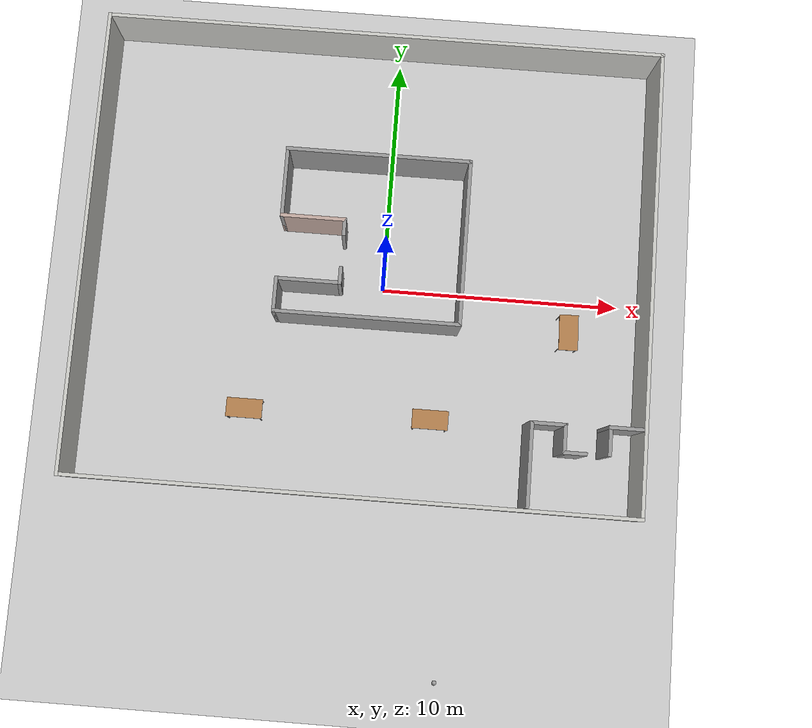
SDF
<sdf version="1.6">
 <world name="default">
  <model name="ground_plane">
   <static>1</static>
   <link name="link">
    <collision name="collision">
     <geometry><plane><normal>0 0 1</normal><size>100 100</size></plane></geometry>
     <surface>
      <contact><collide_bitmask>65535</collide_bitmask></contact>
      <friction><ode><mu>100</mu><mu2>50</mu2></ode></friction>
     </surface>
    </collision>
    <visual name="visual">
     <cast_shadows>0</cast_shadows>
     <geometry><plane><normal>0 0 1</normal><size>100 100</size></plane></geometry>
     <material>
      <script><uri>file://media/materials/scripts/gazebo.material</uri><name>Gazebo/Grey</name></script>
     </material>
    </visual>
   </link>
  </model>
  <model name="building">
   <pose>-0.722 0.806 0 0 -0 0</pose>
   <link name="Wall_11">
    <collision name="Wall_11_Collision">
     <geometry><box><size>7.75 0.15 2.5</size></box></geometry>
     <pose>0 0 1.25 0 -0 0</pose>
    </collision>
    <visual name="Wall_11_Visual">
     <pose>0 0 1.25 0 -0 0</pose>
     <geometry><box><size>7.75 0.15 2.5</size></box></geometry>
     <material>
      <script><uri>file://media/materials/scripts/gazebo.material</uri><name>Gazebo/Grey</name></script>
      <ambient>1 1 1 1</ambient>
     </material>
     <meta><layer>0</layer></meta>
    </visual>
    <pose>0.135 -2.427 0 0 -0 0</pose>
   </link>
   <link name="Wall_12">
    <collision name="Wall_12_Collision">
     <geometry><box><size>7 0.15 2.5</size></box></geometry>
     <pose>0 0 1.25 0 -0 0</pose>
    </collision>
    <visual name="Wall_12_Visual">
     <pose>0 0 1.25 0 -0 0</pose>
     <geometry><box><size>7 0.15 2.5</size></box></geometry>
     <material>
      <script><uri>file://media/materials/scripts/gazebo.material</uri><name>Gazebo/Grey</name></script>
      <ambient>1 1 1 1</ambient>
     </material>
     <meta><layer>0</layer></meta>
    </visual>
    <pose>3.935 0.998 0 0 -0 1.5708</pose>
   </link>
   <link name="Wall_13">
    <collision name="Wall_13_Collision">
     <geometry><box><size>7.75 0.15 2.5</size></box></geometry>
     <pose>0 0 1.25 0 -0 0</pose>
    </collision>
    <visual name="Wall_13_Visual">
     <pose>0 0 1.25 0 -0 0</pose>
     <geometry><box><size>7.75 0.15 2.5</size></box></geometry>
     <material>
      <script><uri>file://media/materials/scripts/gazebo.material</uri><name>Gazebo/Grey</name></script>
      <ambient>1 1 1 1</ambient>
     </material>
     <meta><layer>0</layer></meta>
    </visual>
    <pose>0.135 4.423 0 0 -0 3.14159</pose>
   </link>
   <link name="Wall_15">
    <collision name="Wall_15_Collision">
     <geometry><box><size>3 0.15 2.5</size></box></geometry>
     <pose>0 0 1.25 0 -0 0</pose>
    </collision>
    <visual name="Wall_15_Visual">
     <pose>0 0 1.25 0 -0 0</pose>
     <geometry><box><size>3 0.15 2.5</size></box></geometry>
     <material>
      <script><uri>file://media/materials/scripts/gazebo.material</uri><name>Gazebo/Grey</name></script>
      <ambient>1 1 1 1</ambient>
     </material>
     <meta><layer>0</layer></meta>
    </visual>
    <pose>-3.665 2.998 0 0 0 -1.5708</pose>
   </link>
   <link name="Wall_16">
    <collision name="Wall_16_Collision">
     <geometry><box><size>2.75 0.15 2.5</size></box></geometry>
     <pose>0 0 1.25 0 -0 0</pose>
    </collision>
    <visual name="Wall_16_Visual">
     <pose>0 0 1.25 0 -0 0</pose>
     <geometry><box><size>2.75 0.15 2.5</size></box></geometry>
     <material>
      <script><uri>file://media/materials/scripts/gazebo.material</uri><name>Gazebo/Grey</name></script>
      <ambient>0.760784 0.662745 0.627451 1</ambient>
     </material>
     <meta><layer>0</layer></meta>
    </visual>
    <pose>-2.365 1.573 0 0 -0 0</pose>
   </link>
   <link name="Wall_17">
    <collision name="Wall_17_Collision">
     <geometry><box><size>0.75 0.15 2.5</size></box></geometry>
     <pose>0 0 1.25 0 -0 0</pose>
    </collision>
    <visual name="Wall_17_Visual">
     <pose>0 0 1.25 0 -0 0</pose>
     <geometry><box><size>0.75 0.15 2.5</size></box></geometry>
     <material>
      <script><uri>file://media/materials/scripts/gazebo.material</uri><name>Gazebo/Grey</name></script>
      <ambient>1 1 1 1</ambient>
     </material>
     <meta><layer>0</layer></meta>
    </visual>
    <pose>-1.065 1.273 0 0 0 -1.5708</pose>
   </link>
   <link name="Wall_19">
    <collision name="Wall_19_Collision">
     <geometry><box><size>1.5 0.15 2.5</size></box></geometry>
     <pose>0 0 1.25 0 -0 0</pose>
    </collision>
    <visual name="Wall_19_Visual">
     <pose>0 0 1.25 0 -0 0</pose>
     <geometry><box><size>1.5 0.15 2.5</size></box></geometry>
     <material>
      <script><uri>file://media/materials/scripts/gazebo.material</uri><name>Gazebo/Grey</name></script>
      <ambient>1 1 1 1</ambient>
     </material>
     <meta><layer>0</layer></meta>
    </visual>
    <pose>-3.665 -1.752 0 0 -0 1.5708</pose>
   </link>
   <link name="Wall_20">
    <collision name="Wall_20_Collision">
     <geometry><box><size>2.75 0.15 2.5</size></box></geometry>
     <pose>0 0 1.25 0 -0 0</pose>
    </collision>
    <visual name="Wall_20_Visual">
     <pose>0 0 1.25 0 -0 0</pose>
     <geometry><box><size>2.75 0.15 2.5</size></box></geometry>
     <material>
      <script><uri>file://media/materials/scripts/gazebo.material</uri><name>Gazebo/Grey</name></script>
      <ambient>1 1 1 1</ambient>
     </material>
     <meta><layer>0</layer></meta>
    </visual>
    <pose>-2.365 -1.077 0 0 -0 0</pose>
   </link>
   <link name="Wall_21">
    <collision name="Wall_21_Collision">
     <geometry><box><size>0.75 0.15 2.5</size></box></geometry>
     <pose>0 0 1.25 0 -0 0</pose>
    </collision>
    <visual name="Wall_21_Visual">
     <pose>0 0 1.25 0 -0 0</pose>
     <geometry><box><size>0.75 0.15 2.5</size></box></geometry>
     <material>
      <script><uri>file://media/materials/scripts/gazebo.material</uri><name>Gazebo/Grey</name></script>
      <ambient>1 1 1 1</ambient>
     </material>
     <meta><layer>0</layer></meta>
    </visual>
    <pose>-1.06498 -0.777074 0 0 -0 1.57073</pose>
   </link>
   <link name="Wall_4">
    <collision name="Wall_4_Collision">
     <geometry><box><size>19.5 0.15 2.5</size></box></geometry>
     <pose>0 0 1.25 0 -0 0</pose>
    </collision>
    <visual name="Wall_4_Visual">
     <pose>0 0 1.25 0 -0 0</pose>
     <geometry><box><size>19.5 0.15 2.5</size></box></geometry>
     <material>
      <script><uri>file://media/materials/scripts/gazebo.material</uri><name>Gazebo/CeilingTiled</name></script>
      <ambient>0.435294 0.796078 0.67451 1</ambient>
     </material>
     <meta><layer>0</layer></meta>
    </visual>
    <pose>-11.675 0 0 0 0 -1.5708</pose>
   </link>
   <link name="Wall_5">
    <collision name="Wall_5_Collision">
     <geometry><box><size>23.5 0.15 2.5</size></box></geometry>
     <pose>0 0 1.25 0 -0 0</pose>
    </collision>
    <visual name="Wall_5_Visual">
     <pose>0 0 1.25 0 -0 0</pose>
     <geometry><box><size>23.5 0.15 2.5</size></box></geometry>
     <material>
      <script><uri>file://media/materials/scripts/gazebo.material</uri><name>Gazebo/CeilingTiled</name></script>
      <ambient>0.435294 0.796078 0.67451 1</ambient>
     </material>
     <meta><layer>0</layer></meta>
    </visual>
    <pose>0 -9.675 0 0 -0 0</pose>
   </link>
   <link name="Wall_51">
    <collision name="Wall_51_Collision">
     <geometry><box><size>3.5 0.15 2.5</size></box></geometry>
     <pose>0 0 1.25 0 -0 0</pose>
    </collision>
    <visual name="Wall_51_Visual">
     <pose>0 0 1.25 0 -0 0</pose>
     <geometry><box><size>3.5 0.15 2.5</size></box></geometry>
     <material>
      <script><uri>file://media/materials/scripts/gazebo.material</uri><name>Gazebo/Grey</name></script>
      <ambient>1 1 1 1</ambient>
     </material>
     <meta><layer>0</layer></meta>
    </visual>
    <pose>7.08944 -7.83193 0 0 -0 1.5708</pose>
   </link>
   <link name="Wall_52">
    <collision name="Wall_52_Collision">
     <geometry><box><size>1.5 0.15 2.5</size></box></geometry>
     <pose>0 0 1.25 0 -0 0</pose>
    </collision>
    <visual name="Wall_52_Visual">
     <pose>0 0 1.25 0 -0 0</pose>
     <geometry><box><size>1.5 0.15 2.5</size></box></geometry>
     <material>
      <script><uri>file://media/materials/scripts/gazebo.material</uri><name>Gazebo/Grey</name></script>
      <ambient>1 1 1 1</ambient>
     </material>
     <meta><layer>0</layer></meta>
    </visual>
    <pose>7.76444 -6.15693 0 0 -0 0</pose>
   </link>
   <link name="Wall_53">
    <collision name="Wall_53_Collision">
     <geometry><box><size>1.25 0.15 2.5</size></box></geometry>
     <pose>0 0 1.25 0 -0 0</pose>
    </collision>
    <visual name="Wall_53_Visual">
     <pose>0 0 1.25 0 -0 0</pose>
     <geometry><box><size>1.25 0.15 2.5</size></box></geometry>
     <material>
      <script><uri>file://media/materials/scripts/gazebo.material</uri><name>Gazebo/Grey</name></script>
      <ambient>1 1 1 1</ambient>
     </material>
     <meta><layer>0</layer></meta>
    </visual>
    <pose>8.43944 -6.70693 0 0 0 -1.5708</pose>
   </link>
   <link name="Wall_54">
    <collision name="Wall_54_Collision">
     <geometry><box><size>1 0.15 2.5</size></box></geometry>
     <pose>0 0 1.25 0 -0 0</pose>
    </collision>
    <visual name="Wall_54_Visual">
     <pose>0 0 1.25 0 -0 0</pose>
     <geometry><box><size>1 0.15 2.5</size></box></geometry>
     <material>
      <script><uri>file://media/materials/scripts/gazebo.material</uri><name>Gazebo/Grey</name></script>
      <ambient>1 1 1 1</ambient>
     </material>
     <meta><layer>0</layer></meta>
    </visual>
    <pose>8.86444 -7.25693 0 0 -0 0</pose>
   </link>
   <link name="Wall_56">
    <collision name="Wall_56_Collision">
     <geometry><box><size>1.5 0.15 2.5</size></box></geometry>
     <pose>0 0 1.25 0 -0 0</pose>
    </collision>
    <visual name="Wall_56_Visual">
     <pose>0 0 1.25 0 -0 0</pose>
     <geometry><box><size>1.5 0.15 2.5</size></box></geometry>
     <material>
      <script><uri>file://media/materials/scripts/gazebo.material</uri><name>Gazebo/Grey</name></script>
      <ambient>1 1 1 1</ambient>
     </material>
     <meta><layer>0</layer></meta>
    </visual>
    <pose>10.9273 -6.11068 0 0 -0 3.14159</pose>
   </link>
   <link name="Wall_57">
    <collision name="Wall_57_Collision">
     <geometry><box><size>1.25 0.15 2.5</size></box></geometry>
     <pose>0 0 1.25 0 -0 0</pose>
    </collision>
    <visual name="Wall_57_Visual">
     <pose>0 0 1.25 0 -0 0</pose>
     <geometry><box><size>1.25 0.15 2.5</size></box></geometry>
     <material>
      <script><uri>file://media/materials/scripts/gazebo.material</uri><name>Gazebo/Grey</name></script>
      <ambient>1 1 1 1</ambient>
     </material>
     <meta><layer>0</layer></meta>
    </visual>
    <pose>10.2523 -6.66068 0 0 0 -1.5708</pose>
   </link>
   <link name="Wall_6">
    <collision name="Wall_6_Collision">
     <geometry><box><size>19.5 0.15 2.5</size></box></geometry>
     <pose>0 0 1.25 0 -0 0</pose>
    </collision>
    <visual name="Wall_6_Visual">
     <pose>0 0 1.25 0 -0 0</pose>
     <geometry><box><size>19.5 0.15 2.5</size></box></geometry>
     <material>
      <script><uri>file://media/materials/scripts/gazebo.material</uri><name>Gazebo/CeilingTiled</name></script>
      <ambient>0.435294 0.796078 0.67451 1</ambient>
     </material>
     <meta><layer>0</layer></meta>
    </visual>
    <pose>11.675 0 0 0 -0 1.5708</pose>
   </link>
   <link name="Wall_7">
    <collision name="Wall_7_Collision">
     <geometry><box><size>23.5 0.15 2.5</size></box></geometry>
     <pose>0 0 1.25 0 -0 0</pose>
    </collision>
    <visual name="Wall_7_Visual">
     <pose>0 0 1.25 0 -0 0</pose>
     <geometry><box><size>23.5 0.15 2.5</size></box></geometry>
     <material>
      <script><uri>file://media/materials/scripts/gazebo.material</uri><name>Gazebo/CeilingTiled</name></script>
      <ambient>0.435294 0.796078 0.67451 1</ambient>
     </material>
     <meta><layer>0</layer></meta>
    </visual>
    <pose>0 9.675 0 0 -0 3.14159</pose>
   </link>
   <static>1</static>
  </model>
  <model name="table">
   <static>1</static>
   <link name="link">
    <collision name="surface">
     <pose>0 0 1 0 -0 0</pose>
     <geometry><box><size>1.5 0.8 0.03</size></box></geometry>
     <surface><friction><ode><mu>0.6</mu><mu2>0.6</mu2></ode></friction></surface>
    </collision>
    <visual name="visual1">
     <pose>0 0 1 0 -0 0</pose>
     <geometry><box><size>1.5 0.8 0.03</size></box></geometry>
     <material>
      <script><uri>file://media/materials/scripts/gazebo.material</uri><name>Gazebo/Wood</name></script>
     </material>
    </visual>
    <collision name="front_left_leg">
     <pose>0.68 0.38 0.5 0 -0 0</pose>
     <geometry><cylinder><radius>0.02</radius><length>1</length></cylinder></geometry>
    </collision>
    <visual name="front_left_leg">
     <pose>0.68 0.38 0.5 0 -0 0</pose>
     <geometry><cylinder><radius>0.02</radius><length>1</length></cylinder></geometry>
     <material>
      <script><uri>file://media/materials/scripts/gazebo.material</uri><name>Gazebo/Grey</name></script>
     </material>
    </visual>
    <collision name="front_right_leg">
     <pose>0.68 -0.38 0.5 0 -0 0</pose>
     <geometry><cylinder><radius>0.02</radius><length>1</length></cylinder></geometry>
    </collision>
    <visual name="front_right_leg">
     <pose>0.68 -0.38 0.5 0 -0 0</pose>
     <geometry><cylinder><radius>0.02</radius><length>1</length></cylinder></geometry>
     <material>
      <script><uri>file://media/materials/scripts/gazebo.material</uri><name>Gazebo/Grey</name></script>
     </material>
    </visual>
    <collision name="back_right_leg">
     <pose>-0.68 -0.38 0.5 0 -0 0</pose>
     <geometry><cylinder><radius>0.02</radius><length>1</length></cylinder></geometry>
    </collision>
    <visual name="back_right_leg">
     <pose>-0.68 -0.38 0.5 0 -0 0</pose>
     <geometry><cylinder><radius>0.02</radius><length>1</length></cylinder></geometry>
     <material>
      <script><uri>file://media/materials/scripts/gazebo.material</uri><name>Gazebo/Grey</name></script>
     </material>
    </visual>
    <collision name="back_left_leg">
     <pose>-0.68 0.38 0.5 0 -0 0</pose>
     <geometry><cylinder><radius>0.02</radius><length>1</length></cylinder></geometry>
    </collision>
    <visual name="back_left_leg">
     <pose>-0.68 0.38 0.5 0 -0 0</pose>
     <geometry><cylinder><radius>0.02</radius><length>1</length></cylinder></geometry>
     <material>
      <script><uri>file://media/materials/scripts/gazebo.material</uri><name>Gazebo/Grey</name></script>
     </material>
    </visual>
   </link>
   <pose>2.35411 -5.44146 0 0 -0 0</pose>
  </model>
  <model name="table_clone_0">
   <static>1</static>
   <link name="link">
    <collision name="surface">
     <pose>0 0 1 0 -0 0</pose>
     <geometry><box><size>1.5 0.8 0.03</size></box></geometry>
     <surface><friction><ode><mu>0.6</mu><mu2>0.6</mu2></ode></friction></surface>
    </collision>
    <visual name="visual1">
     <pose>0 0 1 0 -0 0</pose>
     <geometry><box><size>1.5 0.8 0.03</size></box></geometry>
     <material>
      <script><uri>file://media/materials/scripts/gazebo.material</uri><name>Gazebo/Wood</name></script>
     </material>
    </visual>
    <collision name="front_left_leg">
     <pose>0.68 0.38 0.5 0 -0 0</pose>
     <geometry><cylinder><radius>0.02</radius><length>1</length></cylinder></geometry>
    </collision>
    <visual name="front_left_leg">
     <pose>0.68 0.38 0.5 0 -0 0</pose>
     <geometry><cylinder><radius>0.02</radius><length>1</length></cylinder></geometry>
     <material>
      <script><uri>file://media/materials/scripts/gazebo.material</uri><name>Gazebo/Grey</name></script>
     </material>
    </visual>
    <collision name="front_right_leg">
     <pose>0.68 -0.38 0.5 0 -0 0</pose>
     <geometry><cylinder><radius>0.02</radius><length>1</length></cylinder></geometry>
    </collision>
    <visual name="front_right_leg">
     <pose>0.68 -0.38 0.5 0 -0 0</pose>
     <geometry><cylinder><radius>0.02</radius><length>1</length></cylinder></geometry>
     <material>
      <script><uri>file://media/materials/scripts/gazebo.material</uri><name>Gazebo/Grey</name></script>
     </material>
    </visual>
    <collision name="back_right_leg">
     <pose>-0.68 -0.38 0.5 0 -0 0</pose>
     <geometry><cylinder><radius>0.02</radius><length>1</length></cylinder></geometry>
    </collision>
    <visual name="back_right_leg">
     <pose>-0.68 -0.38 0.5 0 -0 0</pose>
     <geometry><cylinder><radius>0.02</radius><length>1</length></cylinder></geometry>
     <material>
      <script><uri>file://media/materials/scripts/gazebo.material</uri><name>Gazebo/Grey</name></script>
     </material>
    </visual>
    <collision name="back_left_leg">
     <pose>-0.68 0.38 0.5 0 -0 0</pose>
     <geometry><cylinder><radius>0.02</radius><length>1</length></cylinder></geometry>
    </collision>
    <visual name="back_left_leg">
     <pose>-0.68 0.38 0.5 0 -0 0</pose>
     <geometry><cylinder><radius>0.02</radius><length>1</length></cylinder></geometry>
     <material>
      <script><uri>file://media/materials/scripts/gazebo.material</uri><name>Gazebo/Grey</name></script>
     </material>
    </visual>
   </link>
   <pose>-5.35874 -5.55545 0 0 -0 0</pose>
  </model>
  <model name="table_clone_0_clone_clone_0">
   <static>1</static>
   <link name="link">
    <collision name="surface">
     <pose>0 0 1 0 -0 0</pose>
     <geometry><box><size>1.5 0.8 0.03</size></box></geometry>
     <surface><friction><ode><mu>0.6</mu><mu2>0.6</mu2></ode></friction></surface>
    </collision>
    <visual name="visual1">
     <pose>0 0 1 0 -0 0</pose>
     <geometry><box><size>1.5 0.8 0.03</size></box></geometry>
     <material>
      <script><uri>file://media/materials/scripts/gazebo.material</uri><name>Gazebo/Wood</name></script>
     </material>
    </visual>
    <collision name="front_left_leg">
     <pose>0.68 0.38 0.5 0 -0 0</pose>
     <geometry><cylinder><radius>0.02</radius><length>1</length></cylinder></geometry>
    </collision>
    <visual name="front_left_leg">
     <pose>0.68 0.38 0.5 0 -0 0</pose>
     <geometry><cylinder><radius>0.02</radius><length>1</length></cylinder></geometry>
     <material>
      <script><uri>file://media/materials/scripts/gazebo.material</uri><name>Gazebo/Grey</name></script>
     </material>
    </visual>
    <collision name="front_right_leg">
     <pose>0.68 -0.38 0.5 0 -0 0</pose>
     <geometry><cylinder><radius>0.02</radius><length>1</length></cylinder></geometry>
    </collision>
    <visual name="front_right_leg">
     <pose>0.68 -0.38 0.5 0 -0 0</pose>
     <geometry><cylinder><radius>0.02</radius><length>1</length></cylinder></geometry>
     <material>
      <script><uri>file://media/materials/scripts/gazebo.material</uri><name>Gazebo/Grey</name></script>
     </material>
    </visual>
    <collision name="back_right_leg">
     <pose>-0.68 -0.38 0.5 0 -0 0</pose>
     <geometry><cylinder><radius>0.02</radius><length>1</length></cylinder></geometry>
    </collision>
    <visual name="back_right_leg">
     <pose>-0.68 -0.38 0.5 0 -0 0</pose>
     <geometry><cylinder><radius>0.02</radius><length>1</length></cylinder></geometry>
     <material>
      <script><uri>file://media/materials/scripts/gazebo.material</uri><name>Gazebo/Grey</name></script>
     </material>
    </visual>
    <collision name="back_left_leg">
     <pose>-0.68 0.38 0.5 0 -0 0</pose>
     <geometry><cylinder><radius>0.02</radius><length>1</length></cylinder></geometry>
    </collision>
    <visual name="back_left_leg">
     <pose>-0.68 0.38 0.5 0 -0 0</pose>
     <geometry><cylinder><radius>0.02</radius><length>1</length></cylinder></geometry>
     <material>
      <script><uri>file://media/materials/scripts/gazebo.material</uri><name>Gazebo/Grey</name></script>
     </material>
    </visual>
   </link>
   <pose>7.87451 -1.35454 0 9.2e-05 0.003589 -1.54506</pose>
  </model>
  <model name="white_ball">
   <link name="link_0">
    <inertial>
     <mass>1</mass>
     <inertia><ixx>0.1</ixx><ixy>0</ixy><ixz>0</ixz><iyy>0.1</iyy><iyz>0</iyz><izz>0.1</izz></inertia>
    </inertial>
    <visual name="visual">
     <geometry><sphere><radius>0.1</radius></sphere></geometry>
     <material>
      <lighting>1</lighting>
      <script><uri>file://media/materials/scripts/gazebo.material</uri><name>Gazebo/Grey</name></script>
      <shader type="pixel"><normal_map>__default__</normal_map></shader>
      <ambient>1 1 1 1</ambient>
      <diffuse>1 1 1 1</diffuse>
      <specular>1 1 1 1</specular>
      <emissive>1 1 1 1</emissive>
     </material>
    </visual>
    <collision name="collision">
     <geometry><sphere><radius>0.1</radius></sphere></geometry>
     <surface>
      <friction>
       <ode><mu>1</mu><mu2>1</mu2><fdir1>0 0 0</fdir1><slip1>0</slip1><slip2>0</slip2></ode>
       <torsional>
        <coefficient>1</coefficient>
        <patch_radius>0</patch_radius>
        <surface_radius>0</surface_radius>
        <use_patch_radius>1</use_patch_radius>
        <ode><slip>0</slip></ode>
       </torsional>
      </friction>
      <bounce><restitution_coefficient>0</restitution_coefficient><threshold>1e+06</threshold></bounce>
      <contact>
       <collide_without_contact>0</collide_without_contact>
       <collide_without_contact_bitmask>1</collide_without_contact_bitmask>
       <collide_bitmask>1</collide_bitmask>
       <ode>
        <soft_cfm>0</soft_cfm>
        <soft_erp>0.2</soft_erp>
        <kp>1e+13</kp>
        <kd>1</kd>
        <max_vel>0.01</max_vel>
        <min_depth>0</min_depth>
       </ode>
       <bullet>
        <split_impulse>1</split_impulse>
        <split_impulse_penetration_threshold>-0.01</split_impulse_penetration_threshold>
        <soft_cfm>0</soft_cfm>
        <soft_erp>0.2</soft_erp>
        <kp>1e+13</kp>
        <kd>1</kd>
       </bullet>
      </contact>
     </surface>
    </collision>
   </link>
   <static>0</static>
   <pose>3.30958 -16.0765 0.1 0 -0 0</pose>
  </model>
 </world>
</sdf>
